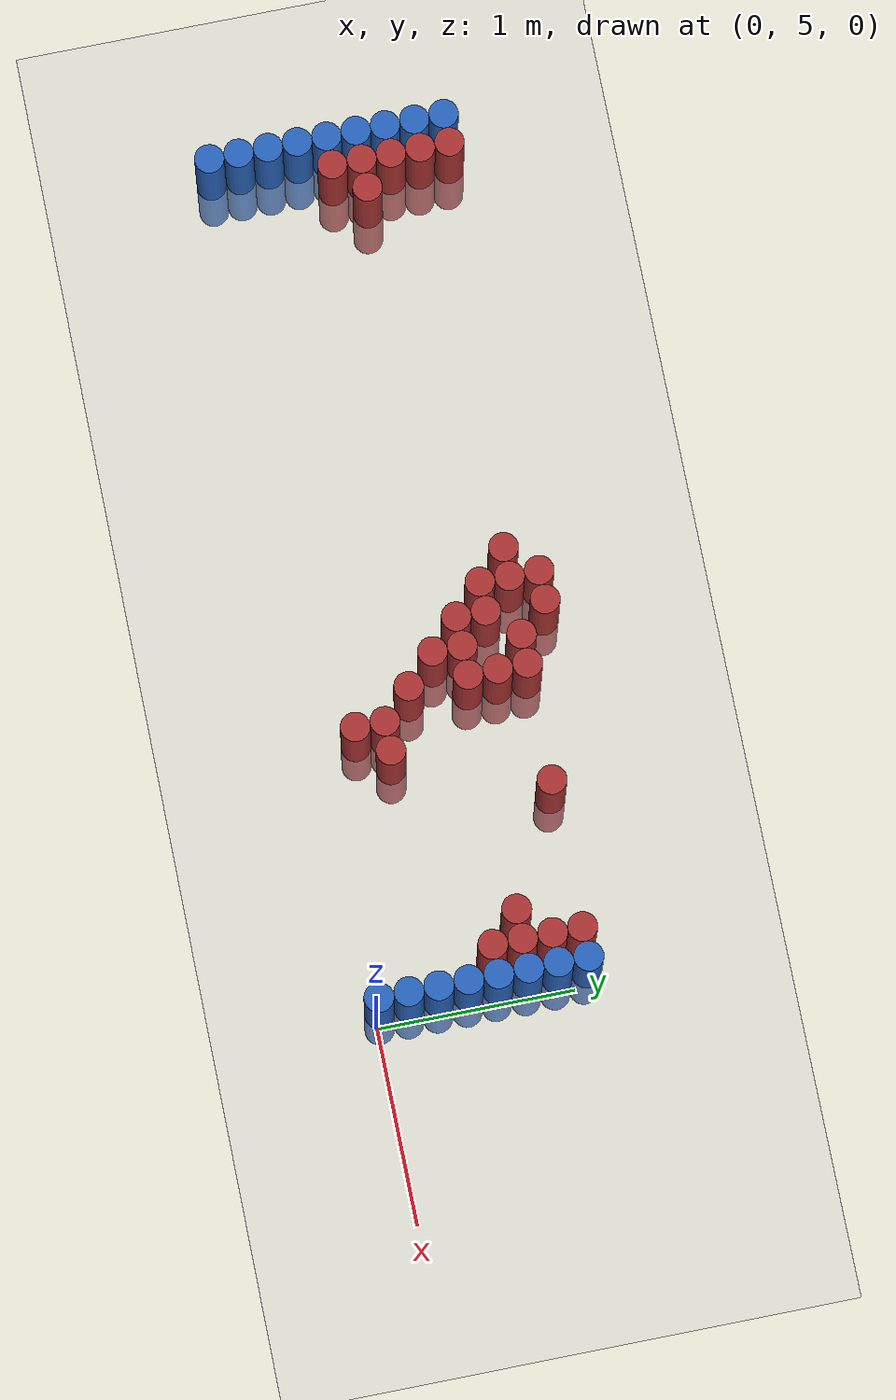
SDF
<sdf version="1.6">
 <world name="world_216">
  <model name="ground_plane">
   <static>1</static>
   <link name="link">
    <collision name="collision">
     <geometry><plane><normal>0 0 1</normal><size>100 100</size></plane></geometry>
     <surface><friction><ode><mu>100</mu><mu2>50</mu2></ode></friction></surface>
    </collision>
    <visual name="visual">
     <cast_shadows>0</cast_shadows>
     <geometry><plane><normal>0 0 1</normal><size>100 100</size></plane></geometry>
     <material>
      <script><uri>file://media/materials/scripts/gazebo.material</uri><name>Gazebo/Grey</name></script>
     </material>
    </visual>
   </link>
  </model>
  <model name="unit_cylinder_94">
   <static>1</static>
   <pose>-0.075000 5.025000 0.000000 0.000000 0.000000 0.000000</pose>
   <link name="link">
    <inertial>
     <mass>1</mass>
     <inertia><ixx>0.145833</ixx><ixy>0</ixy><ixz>0</ixz><iyy>0.145833</iyy><iyz>0</iyz><izz>0.125</izz></inertia>
    </inertial>
    <collision name="collision">
     <geometry><cylinder><radius>0.075000</radius><length>1</length></cylinder></geometry>
    </collision>
    <visual name="visual">
     <geometry><cylinder><radius>0.075000</radius><length>1</length></cylinder></geometry>
     <material>
      <ambient>0.152000 0.379000 0.720000 1</ambient>
      <diffuse>0.152000 0.379000 0.720000 1</diffuse>
     </material>
     <material>
      <script><name>Gazebo/Grey</name><uri>file://media/materials/scripts/gazebo.material</uri></script>
     </material>
    </visual>
   </link>
  </model>
  <model name="unit_cylinder_95">
   <static>1</static>
   <pose>-4.425000 5.025000 0.000000 0.000000 0.000000 0.000000</pose>
   <link name="link">
    <inertial>
     <mass>1</mass>
     <inertia><ixx>0.145833</ixx><ixy>0</ixy><ixz>0</ixz><iyy>0.145833</iyy><iyz>0</iyz><izz>0.125</izz></inertia>
    </inertial>
    <collision name="collision">
     <geometry><cylinder><radius>0.075000</radius><length>1</length></cylinder></geometry>
    </collision>
    <visual name="visual">
     <geometry><cylinder><radius>0.075000</radius><length>1</length></cylinder></geometry>
     <material>
      <ambient>0.152000 0.379000 0.720000 1</ambient>
      <diffuse>0.152000 0.379000 0.720000 1</diffuse>
     </material>
     <material>
      <script><name>Gazebo/Grey</name><uri>file://media/materials/scripts/gazebo.material</uri></script>
     </material>
    </visual>
   </link>
  </model>
  <model name="unit_cylinder_96">
   <static>1</static>
   <pose>-4.425000 5.175000 0.000000 0.000000 0.000000 0.000000</pose>
   <link name="link">
    <inertial>
     <mass>1</mass>
     <inertia><ixx>0.145833</ixx><ixy>0</ixy><ixz>0</ixz><iyy>0.145833</iyy><iyz>0</iyz><izz>0.125</izz></inertia>
    </inertial>
    <collision name="collision">
     <geometry><cylinder><radius>0.075000</radius><length>1</length></cylinder></geometry>
    </collision>
    <visual name="visual">
     <geometry><cylinder><radius>0.075000</radius><length>1</length></cylinder></geometry>
     <material>
      <ambient>0.152000 0.379000 0.720000 1</ambient>
      <diffuse>0.152000 0.379000 0.720000 1</diffuse>
     </material>
     <material>
      <script><name>Gazebo/Grey</name><uri>file://media/materials/scripts/gazebo.material</uri></script>
     </material>
    </visual>
   </link>
  </model>
  <model name="unit_cylinder_97">
   <static>1</static>
   <pose>-4.425000 5.325000 0.000000 0.000000 0.000000 0.000000</pose>
   <link name="link">
    <inertial>
     <mass>1</mass>
     <inertia><ixx>0.145833</ixx><ixy>0</ixy><ixz>0</ixz><iyy>0.145833</iyy><iyz>0</iyz><izz>0.125</izz></inertia>
    </inertial>
    <collision name="collision">
     <geometry><cylinder><radius>0.075000</radius><length>1</length></cylinder></geometry>
    </collision>
    <visual name="visual">
     <geometry><cylinder><radius>0.075000</radius><length>1</length></cylinder></geometry>
     <material>
      <ambient>0.152000 0.379000 0.720000 1</ambient>
      <diffuse>0.152000 0.379000 0.720000 1</diffuse>
     </material>
     <material>
      <script><name>Gazebo/Grey</name><uri>file://media/materials/scripts/gazebo.material</uri></script>
     </material>
    </visual>
   </link>
  </model>
  <model name="unit_cylinder_98">
   <static>1</static>
   <pose>-4.425000 5.475000 0.000000 0.000000 0.000000 0.000000</pose>
   <link name="link">
    <inertial>
     <mass>1</mass>
     <inertia><ixx>0.145833</ixx><ixy>0</ixy><ixz>0</ixz><iyy>0.145833</iyy><iyz>0</iyz><izz>0.125</izz></inertia>
    </inertial>
    <collision name="collision">
     <geometry><cylinder><radius>0.075000</radius><length>1</length></cylinder></geometry>
    </collision>
    <visual name="visual">
     <geometry><cylinder><radius>0.075000</radius><length>1</length></cylinder></geometry>
     <material>
      <ambient>0.152000 0.379000 0.720000 1</ambient>
      <diffuse>0.152000 0.379000 0.720000 1</diffuse>
     </material>
     <material>
      <script><name>Gazebo/Grey</name><uri>file://media/materials/scripts/gazebo.material</uri></script>
     </material>
    </visual>
   </link>
  </model>
  <model name="unit_cylinder_99">
   <static>1</static>
   <pose>-4.425000 5.625000 0.000000 0.000000 0.000000 0.000000</pose>
   <link name="link">
    <inertial>
     <mass>1</mass>
     <inertia><ixx>0.145833</ixx><ixy>0</ixy><ixz>0</ixz><iyy>0.145833</iyy><iyz>0</iyz><izz>0.125</izz></inertia>
    </inertial>
    <collision name="collision">
     <geometry><cylinder><radius>0.075000</radius><length>1</length></cylinder></geometry>
    </collision>
    <visual name="visual">
     <geometry><cylinder><radius>0.075000</radius><length>1</length></cylinder></geometry>
     <material>
      <ambient>0.152000 0.379000 0.720000 1</ambient>
      <diffuse>0.152000 0.379000 0.720000 1</diffuse>
     </material>
     <material>
      <script><name>Gazebo/Grey</name><uri>file://media/materials/scripts/gazebo.material</uri></script>
     </material>
    </visual>
   </link>
  </model>
  <model name="unit_cylinder_100">
   <static>1</static>
   <pose>-4.425000 5.775000 0.000000 0.000000 0.000000 0.000000</pose>
   <link name="link">
    <inertial>
     <mass>1</mass>
     <inertia><ixx>0.145833</ixx><ixy>0</ixy><ixz>0</ixz><iyy>0.145833</iyy><iyz>0</iyz><izz>0.125</izz></inertia>
    </inertial>
    <collision name="collision">
     <geometry><cylinder><radius>0.075000</radius><length>1</length></cylinder></geometry>
    </collision>
    <visual name="visual">
     <geometry><cylinder><radius>0.075000</radius><length>1</length></cylinder></geometry>
     <material>
      <ambient>0.152000 0.379000 0.720000 1</ambient>
      <diffuse>0.152000 0.379000 0.720000 1</diffuse>
     </material>
     <material>
      <script><name>Gazebo/Grey</name><uri>file://media/materials/scripts/gazebo.material</uri></script>
     </material>
    </visual>
   </link>
  </model>
  <model name="unit_cylinder_101">
   <static>1</static>
   <pose>-4.425000 5.925000 0.000000 0.000000 0.000000 0.000000</pose>
   <link name="link">
    <inertial>
     <mass>1</mass>
     <inertia><ixx>0.145833</ixx><ixy>0</ixy><ixz>0</ixz><iyy>0.145833</iyy><iyz>0</iyz><izz>0.125</izz></inertia>
    </inertial>
    <collision name="collision">
     <geometry><cylinder><radius>0.075000</radius><length>1</length></cylinder></geometry>
    </collision>
    <visual name="visual">
     <geometry><cylinder><radius>0.075000</radius><length>1</length></cylinder></geometry>
     <material>
      <ambient>0.152000 0.379000 0.720000 1</ambient>
      <diffuse>0.152000 0.379000 0.720000 1</diffuse>
     </material>
     <material>
      <script><name>Gazebo/Grey</name><uri>file://media/materials/scripts/gazebo.material</uri></script>
     </material>
    </visual>
   </link>
  </model>
  <model name="unit_cylinder_102">
   <static>1</static>
   <pose>-4.425000 6.075000 0.000000 0.000000 0.000000 0.000000</pose>
   <link name="link">
    <inertial>
     <mass>1</mass>
     <inertia><ixx>0.145833</ixx><ixy>0</ixy><ixz>0</ixz><iyy>0.145833</iyy><iyz>0</iyz><izz>0.125</izz></inertia>
    </inertial>
    <collision name="collision">
     <geometry><cylinder><radius>0.075000</radius><length>1</length></cylinder></geometry>
    </collision>
    <visual name="visual">
     <geometry><cylinder><radius>0.075000</radius><length>1</length></cylinder></geometry>
     <material>
      <ambient>0.152000 0.379000 0.720000 1</ambient>
      <diffuse>0.152000 0.379000 0.720000 1</diffuse>
     </material>
     <material>
      <script><name>Gazebo/Grey</name><uri>file://media/materials/scripts/gazebo.material</uri></script>
     </material>
    </visual>
   </link>
  </model>
  <model name="unit_cylinder_103">
   <static>1</static>
   <pose>-4.425000 6.225000 0.000000 0.000000 0.000000 0.000000</pose>
   <link name="link">
    <inertial>
     <mass>1</mass>
     <inertia><ixx>0.145833</ixx><ixy>0</ixy><ixz>0</ixz><iyy>0.145833</iyy><iyz>0</iyz><izz>0.125</izz></inertia>
    </inertial>
    <collision name="collision">
     <geometry><cylinder><radius>0.075000</radius><length>1</length></cylinder></geometry>
    </collision>
    <visual name="visual">
     <geometry><cylinder><radius>0.075000</radius><length>1</length></cylinder></geometry>
     <material>
      <ambient>0.152000 0.379000 0.720000 1</ambient>
      <diffuse>0.152000 0.379000 0.720000 1</diffuse>
     </material>
     <material>
      <script><name>Gazebo/Grey</name><uri>file://media/materials/scripts/gazebo.material</uri></script>
     </material>
    </visual>
   </link>
  </model>
  <model name="unit_cylinder_126">
   <static>1</static>
   <pose>-4.275000 5.625000 0.000000 0.000000 0.000000 0.000000</pose>
   <link name="link">
    <inertial>
     <mass>1</mass>
     <inertia><ixx>0.145833</ixx><ixy>0</ixy><ixz>0</ixz><iyy>0.145833</iyy><iyz>0</iyz><izz>0.125</izz></inertia>
    </inertial>
    <collision name="collision">
     <geometry><cylinder><radius>0.075000</radius><length>1</length></cylinder></geometry>
    </collision>
    <visual name="visual">
     <geometry><cylinder><radius>0.075000</radius><length>1</length></cylinder></geometry>
     <material>
      <ambient>0.648000 0.192000 0.192000 1</ambient>
      <diffuse>0.648000 0.192000 0.192000 1</diffuse>
     </material>
     <material>
      <script><name>Gazebo/Grey</name><uri>file://media/materials/scripts/gazebo.material</uri></script>
     </material>
    </visual>
   </link>
  </model>
  <model name="unit_cylinder_127">
   <static>1</static>
   <pose>-4.275000 5.775000 0.000000 0.000000 0.000000 0.000000</pose>
   <link name="link">
    <inertial>
     <mass>1</mass>
     <inertia><ixx>0.145833</ixx><ixy>0</ixy><ixz>0</ixz><iyy>0.145833</iyy><iyz>0</iyz><izz>0.125</izz></inertia>
    </inertial>
    <collision name="collision">
     <geometry><cylinder><radius>0.075000</radius><length>1</length></cylinder></geometry>
    </collision>
    <visual name="visual">
     <geometry><cylinder><radius>0.075000</radius><length>1</length></cylinder></geometry>
     <material>
      <ambient>0.648000 0.192000 0.192000 1</ambient>
      <diffuse>0.648000 0.192000 0.192000 1</diffuse>
     </material>
     <material>
      <script><name>Gazebo/Grey</name><uri>file://media/materials/scripts/gazebo.material</uri></script>
     </material>
    </visual>
   </link>
  </model>
  <model name="unit_cylinder_128">
   <static>1</static>
   <pose>-4.275000 5.925000 0.000000 0.000000 0.000000 0.000000</pose>
   <link name="link">
    <inertial>
     <mass>1</mass>
     <inertia><ixx>0.145833</ixx><ixy>0</ixy><ixz>0</ixz><iyy>0.145833</iyy><iyz>0</iyz><izz>0.125</izz></inertia>
    </inertial>
    <collision name="collision">
     <geometry><cylinder><radius>0.075000</radius><length>1</length></cylinder></geometry>
    </collision>
    <visual name="visual">
     <geometry><cylinder><radius>0.075000</radius><length>1</length></cylinder></geometry>
     <material>
      <ambient>0.648000 0.192000 0.192000 1</ambient>
      <diffuse>0.648000 0.192000 0.192000 1</diffuse>
     </material>
     <material>
      <script><name>Gazebo/Grey</name><uri>file://media/materials/scripts/gazebo.material</uri></script>
     </material>
    </visual>
   </link>
  </model>
  <model name="unit_cylinder_129">
   <static>1</static>
   <pose>-4.275000 6.075000 0.000000 0.000000 0.000000 0.000000</pose>
   <link name="link">
    <inertial>
     <mass>1</mass>
     <inertia><ixx>0.145833</ixx><ixy>0</ixy><ixz>0</ixz><iyy>0.145833</iyy><iyz>0</iyz><izz>0.125</izz></inertia>
    </inertial>
    <collision name="collision">
     <geometry><cylinder><radius>0.075000</radius><length>1</length></cylinder></geometry>
    </collision>
    <visual name="visual">
     <geometry><cylinder><radius>0.075000</radius><length>1</length></cylinder></geometry>
     <material>
      <ambient>0.648000 0.192000 0.192000 1</ambient>
      <diffuse>0.648000 0.192000 0.192000 1</diffuse>
     </material>
     <material>
      <script><name>Gazebo/Grey</name><uri>file://media/materials/scripts/gazebo.material</uri></script>
     </material>
    </visual>
   </link>
  </model>
  <model name="unit_cylinder_130">
   <static>1</static>
   <pose>-4.275000 6.225000 0.000000 0.000000 0.000000 0.000000</pose>
   <link name="link">
    <inertial>
     <mass>1</mass>
     <inertia><ixx>0.145833</ixx><ixy>0</ixy><ixz>0</ixz><iyy>0.145833</iyy><iyz>0</iyz><izz>0.125</izz></inertia>
    </inertial>
    <collision name="collision">
     <geometry><cylinder><radius>0.075000</radius><length>1</length></cylinder></geometry>
    </collision>
    <visual name="visual">
     <geometry><cylinder><radius>0.075000</radius><length>1</length></cylinder></geometry>
     <material>
      <ambient>0.648000 0.192000 0.192000 1</ambient>
      <diffuse>0.648000 0.192000 0.192000 1</diffuse>
     </material>
     <material>
      <script><name>Gazebo/Grey</name><uri>file://media/materials/scripts/gazebo.material</uri></script>
     </material>
    </visual>
   </link>
  </model>
  <model name="unit_cylinder_140">
   <static>1</static>
   <pose>-4.125000 5.775000 0.000000 0.000000 0.000000 0.000000</pose>
   <link name="link">
    <inertial>
     <mass>1</mass>
     <inertia><ixx>0.145833</ixx><ixy>0</ixy><ixz>0</ixz><iyy>0.145833</iyy><iyz>0</iyz><izz>0.125</izz></inertia>
    </inertial>
    <collision name="collision">
     <geometry><cylinder><radius>0.075000</radius><length>1</length></cylinder></geometry>
    </collision>
    <visual name="visual">
     <geometry><cylinder><radius>0.075000</radius><length>1</length></cylinder></geometry>
     <material>
      <ambient>0.648000 0.192000 0.192000 1</ambient>
      <diffuse>0.648000 0.192000 0.192000 1</diffuse>
     </material>
     <material>
      <script><name>Gazebo/Grey</name><uri>file://media/materials/scripts/gazebo.material</uri></script>
     </material>
    </visual>
   </link>
  </model>
  <model name="unit_cylinder_152">
   <static>1</static>
   <pose>-2.175000 6.075000 0.000000 0.000000 0.000000 0.000000</pose>
   <link name="link">
    <inertial>
     <mass>1</mass>
     <inertia><ixx>0.145833</ixx><ixy>0</ixy><ixz>0</ixz><iyy>0.145833</iyy><iyz>0</iyz><izz>0.125</izz></inertia>
    </inertial>
    <collision name="collision">
     <geometry><cylinder><radius>0.075000</radius><length>1</length></cylinder></geometry>
    </collision>
    <visual name="visual">
     <geometry><cylinder><radius>0.075000</radius><length>1</length></cylinder></geometry>
     <material>
      <ambient>0.648000 0.192000 0.192000 1</ambient>
      <diffuse>0.648000 0.192000 0.192000 1</diffuse>
     </material>
     <material>
      <script><name>Gazebo/Grey</name><uri>file://media/materials/scripts/gazebo.material</uri></script>
     </material>
    </visual>
   </link>
  </model>
  <model name="unit_cylinder_160">
   <static>1</static>
   <pose>-2.025000 5.925000 0.000000 0.000000 0.000000 0.000000</pose>
   <link name="link">
    <inertial>
     <mass>1</mass>
     <inertia><ixx>0.145833</ixx><ixy>0</ixy><ixz>0</ixz><iyy>0.145833</iyy><iyz>0</iyz><izz>0.125</izz></inertia>
    </inertial>
    <collision name="collision">
     <geometry><cylinder><radius>0.075000</radius><length>1</length></cylinder></geometry>
    </collision>
    <visual name="visual">
     <geometry><cylinder><radius>0.075000</radius><length>1</length></cylinder></geometry>
     <material>
      <ambient>0.648000 0.192000 0.192000 1</ambient>
      <diffuse>0.648000 0.192000 0.192000 1</diffuse>
     </material>
     <material>
      <script><name>Gazebo/Grey</name><uri>file://media/materials/scripts/gazebo.material</uri></script>
     </material>
    </visual>
   </link>
  </model>
  <model name="unit_cylinder_161">
   <static>1</static>
   <pose>-2.025000 6.075000 0.000000 0.000000 0.000000 0.000000</pose>
   <link name="link">
    <inertial>
     <mass>1</mass>
     <inertia><ixx>0.145833</ixx><ixy>0</ixy><ixz>0</ixz><iyy>0.145833</iyy><iyz>0</iyz><izz>0.125</izz></inertia>
    </inertial>
    <collision name="collision">
     <geometry><cylinder><radius>0.075000</radius><length>1</length></cylinder></geometry>
    </collision>
    <visual name="visual">
     <geometry><cylinder><radius>0.075000</radius><length>1</length></cylinder></geometry>
     <material>
      <ambient>0.648000 0.192000 0.192000 1</ambient>
      <diffuse>0.648000 0.192000 0.192000 1</diffuse>
     </material>
     <material>
      <script><name>Gazebo/Grey</name><uri>file://media/materials/scripts/gazebo.material</uri></script>
     </material>
    </visual>
   </link>
  </model>
  <model name="unit_cylinder_162">
   <static>1</static>
   <pose>-2.025000 6.225000 0.000000 0.000000 0.000000 0.000000</pose>
   <link name="link">
    <inertial>
     <mass>1</mass>
     <inertia><ixx>0.145833</ixx><ixy>0</ixy><ixz>0</ixz><iyy>0.145833</iyy><iyz>0</iyz><izz>0.125</izz></inertia>
    </inertial>
    <collision name="collision">
     <geometry><cylinder><radius>0.075000</radius><length>1</length></cylinder></geometry>
    </collision>
    <visual name="visual">
     <geometry><cylinder><radius>0.075000</radius><length>1</length></cylinder></geometry>
     <material>
      <ambient>0.648000 0.192000 0.192000 1</ambient>
      <diffuse>0.648000 0.192000 0.192000 1</diffuse>
     </material>
     <material>
      <script><name>Gazebo/Grey</name><uri>file://media/materials/scripts/gazebo.material</uri></script>
     </material>
    </visual>
   </link>
  </model>
  <model name="unit_cylinder_171">
   <static>1</static>
   <pose>-1.875000 5.775000 0.000000 0.000000 0.000000 0.000000</pose>
   <link name="link">
    <inertial>
     <mass>1</mass>
     <inertia><ixx>0.145833</ixx><ixy>0</ixy><ixz>0</ixz><iyy>0.145833</iyy><iyz>0</iyz><izz>0.125</izz></inertia>
    </inertial>
    <collision name="collision">
     <geometry><cylinder><radius>0.075000</radius><length>1</length></cylinder></geometry>
    </collision>
    <visual name="visual">
     <geometry><cylinder><radius>0.075000</radius><length>1</length></cylinder></geometry>
     <material>
      <ambient>0.648000 0.192000 0.192000 1</ambient>
      <diffuse>0.648000 0.192000 0.192000 1</diffuse>
     </material>
     <material>
      <script><name>Gazebo/Grey</name><uri>file://media/materials/scripts/gazebo.material</uri></script>
     </material>
    </visual>
   </link>
  </model>
  <model name="unit_cylinder_172">
   <static>1</static>
   <pose>-1.875000 5.925000 0.000000 0.000000 0.000000 0.000000</pose>
   <link name="link">
    <inertial>
     <mass>1</mass>
     <inertia><ixx>0.145833</ixx><ixy>0</ixy><ixz>0</ixz><iyy>0.145833</iyy><iyz>0</iyz><izz>0.125</izz></inertia>
    </inertial>
    <collision name="collision">
     <geometry><cylinder><radius>0.075000</radius><length>1</length></cylinder></geometry>
    </collision>
    <visual name="visual">
     <geometry><cylinder><radius>0.075000</radius><length>1</length></cylinder></geometry>
     <material>
      <ambient>0.648000 0.192000 0.192000 1</ambient>
      <diffuse>0.648000 0.192000 0.192000 1</diffuse>
     </material>
     <material>
      <script><name>Gazebo/Grey</name><uri>file://media/materials/scripts/gazebo.material</uri></script>
     </material>
    </visual>
   </link>
  </model>
  <model name="unit_cylinder_173">
   <static>1</static>
   <pose>-1.875000 6.225000 0.000000 0.000000 0.000000 0.000000</pose>
   <link name="link">
    <inertial>
     <mass>1</mass>
     <inertia><ixx>0.145833</ixx><ixy>0</ixy><ixz>0</ixz><iyy>0.145833</iyy><iyz>0</iyz><izz>0.125</izz></inertia>
    </inertial>
    <collision name="collision">
     <geometry><cylinder><radius>0.075000</radius><length>1</length></cylinder></geometry>
    </collision>
    <visual name="visual">
     <geometry><cylinder><radius>0.075000</radius><length>1</length></cylinder></geometry>
     <material>
      <ambient>0.648000 0.192000 0.192000 1</ambient>
      <diffuse>0.648000 0.192000 0.192000 1</diffuse>
     </material>
     <material>
      <script><name>Gazebo/Grey</name><uri>file://media/materials/scripts/gazebo.material</uri></script>
     </material>
    </visual>
   </link>
  </model>
  <model name="unit_cylinder_180">
   <static>1</static>
   <pose>-1.725000 5.625000 0.000000 0.000000 0.000000 0.000000</pose>
   <link name="link">
    <inertial>
     <mass>1</mass>
     <inertia><ixx>0.145833</ixx><ixy>0</ixy><ixz>0</ixz><iyy>0.145833</iyy><iyz>0</iyz><izz>0.125</izz></inertia>
    </inertial>
    <collision name="collision">
     <geometry><cylinder><radius>0.075000</radius><length>1</length></cylinder></geometry>
    </collision>
    <visual name="visual">
     <geometry><cylinder><radius>0.075000</radius><length>1</length></cylinder></geometry>
     <material>
      <ambient>0.648000 0.192000 0.192000 1</ambient>
      <diffuse>0.648000 0.192000 0.192000 1</diffuse>
     </material>
     <material>
      <script><name>Gazebo/Grey</name><uri>file://media/materials/scripts/gazebo.material</uri></script>
     </material>
    </visual>
   </link>
  </model>
  <model name="unit_cylinder_181">
   <static>1</static>
   <pose>-1.725000 5.775000 0.000000 0.000000 0.000000 0.000000</pose>
   <link name="link">
    <inertial>
     <mass>1</mass>
     <inertia><ixx>0.145833</ixx><ixy>0</ixy><ixz>0</ixz><iyy>0.145833</iyy><iyz>0</iyz><izz>0.125</izz></inertia>
    </inertial>
    <collision name="collision">
     <geometry><cylinder><radius>0.075000</radius><length>1</length></cylinder></geometry>
    </collision>
    <visual name="visual">
     <geometry><cylinder><radius>0.075000</radius><length>1</length></cylinder></geometry>
     <material>
      <ambient>0.648000 0.192000 0.192000 1</ambient>
      <diffuse>0.648000 0.192000 0.192000 1</diffuse>
     </material>
     <material>
      <script><name>Gazebo/Grey</name><uri>file://media/materials/scripts/gazebo.material</uri></script>
     </material>
    </visual>
   </link>
  </model>
  <model name="unit_cylinder_182">
   <static>1</static>
   <pose>-1.725000 6.075000 0.000000 0.000000 0.000000 0.000000</pose>
   <link name="link">
    <inertial>
     <mass>1</mass>
     <inertia><ixx>0.145833</ixx><ixy>0</ixy><ixz>0</ixz><iyy>0.145833</iyy><iyz>0</iyz><izz>0.125</izz></inertia>
    </inertial>
    <collision name="collision">
     <geometry><cylinder><radius>0.075000</radius><length>1</length></cylinder></geometry>
    </collision>
    <visual name="visual">
     <geometry><cylinder><radius>0.075000</radius><length>1</length></cylinder></geometry>
     <material>
      <ambient>0.648000 0.192000 0.192000 1</ambient>
      <diffuse>0.648000 0.192000 0.192000 1</diffuse>
     </material>
     <material>
      <script><name>Gazebo/Grey</name><uri>file://media/materials/scripts/gazebo.material</uri></script>
     </material>
    </visual>
   </link>
  </model>
  <model name="unit_cylinder_189">
   <static>1</static>
   <pose>-1.575000 5.475000 0.000000 0.000000 0.000000 0.000000</pose>
   <link name="link">
    <inertial>
     <mass>1</mass>
     <inertia><ixx>0.145833</ixx><ixy>0</ixy><ixz>0</ixz><iyy>0.145833</iyy><iyz>0</iyz><izz>0.125</izz></inertia>
    </inertial>
    <collision name="collision">
     <geometry><cylinder><radius>0.075000</radius><length>1</length></cylinder></geometry>
    </collision>
    <visual name="visual">
     <geometry><cylinder><radius>0.075000</radius><length>1</length></cylinder></geometry>
     <material>
      <ambient>0.648000 0.192000 0.192000 1</ambient>
      <diffuse>0.648000 0.192000 0.192000 1</diffuse>
     </material>
     <material>
      <script><name>Gazebo/Grey</name><uri>file://media/materials/scripts/gazebo.material</uri></script>
     </material>
    </visual>
   </link>
  </model>
  <model name="unit_cylinder_190">
   <static>1</static>
   <pose>-1.575000 5.775000 0.000000 0.000000 0.000000 0.000000</pose>
   <link name="link">
    <inertial>
     <mass>1</mass>
     <inertia><ixx>0.145833</ixx><ixy>0</ixy><ixz>0</ixz><iyy>0.145833</iyy><iyz>0</iyz><izz>0.125</izz></inertia>
    </inertial>
    <collision name="collision">
     <geometry><cylinder><radius>0.075000</radius><length>1</length></cylinder></geometry>
    </collision>
    <visual name="visual">
     <geometry><cylinder><radius>0.075000</radius><length>1</length></cylinder></geometry>
     <material>
      <ambient>0.648000 0.192000 0.192000 1</ambient>
      <diffuse>0.648000 0.192000 0.192000 1</diffuse>
     </material>
     <material>
      <script><name>Gazebo/Grey</name><uri>file://media/materials/scripts/gazebo.material</uri></script>
     </material>
    </visual>
   </link>
  </model>
  <model name="unit_cylinder_191">
   <static>1</static>
   <pose>-1.575000 5.925000 0.000000 0.000000 0.000000 0.000000</pose>
   <link name="link">
    <inertial>
     <mass>1</mass>
     <inertia><ixx>0.145833</ixx><ixy>0</ixy><ixz>0</ixz><iyy>0.145833</iyy><iyz>0</iyz><izz>0.125</izz></inertia>
    </inertial>
    <collision name="collision">
     <geometry><cylinder><radius>0.075000</radius><length>1</length></cylinder></geometry>
    </collision>
    <visual name="visual">
     <geometry><cylinder><radius>0.075000</radius><length>1</length></cylinder></geometry>
     <material>
      <ambient>0.648000 0.192000 0.192000 1</ambient>
      <diffuse>0.648000 0.192000 0.192000 1</diffuse>
     </material>
     <material>
      <script><name>Gazebo/Grey</name><uri>file://media/materials/scripts/gazebo.material</uri></script>
     </material>
    </visual>
   </link>
  </model>
  <model name="unit_cylinder_192">
   <static>1</static>
   <pose>-1.575000 6.075000 0.000000 0.000000 0.000000 0.000000</pose>
   <link name="link">
    <inertial>
     <mass>1</mass>
     <inertia><ixx>0.145833</ixx><ixy>0</ixy><ixz>0</ixz><iyy>0.145833</iyy><iyz>0</iyz><izz>0.125</izz></inertia>
    </inertial>
    <collision name="collision">
     <geometry><cylinder><radius>0.075000</radius><length>1</length></cylinder></geometry>
    </collision>
    <visual name="visual">
     <geometry><cylinder><radius>0.075000</radius><length>1</length></cylinder></geometry>
     <material>
      <ambient>0.648000 0.192000 0.192000 1</ambient>
      <diffuse>0.648000 0.192000 0.192000 1</diffuse>
     </material>
     <material>
      <script><name>Gazebo/Grey</name><uri>file://media/materials/scripts/gazebo.material</uri></script>
     </material>
    </visual>
   </link>
  </model>
  <model name="unit_cylinder_195">
   <static>1</static>
   <pose>-1.425000 5.175000 0.000000 0.000000 0.000000 0.000000</pose>
   <link name="link">
    <inertial>
     <mass>1</mass>
     <inertia><ixx>0.145833</ixx><ixy>0</ixy><ixz>0</ixz><iyy>0.145833</iyy><iyz>0</iyz><izz>0.125</izz></inertia>
    </inertial>
    <collision name="collision">
     <geometry><cylinder><radius>0.075000</radius><length>1</length></cylinder></geometry>
    </collision>
    <visual name="visual">
     <geometry><cylinder><radius>0.075000</radius><length>1</length></cylinder></geometry>
     <material>
      <ambient>0.648000 0.192000 0.192000 1</ambient>
      <diffuse>0.648000 0.192000 0.192000 1</diffuse>
     </material>
     <material>
      <script><name>Gazebo/Grey</name><uri>file://media/materials/scripts/gazebo.material</uri></script>
     </material>
    </visual>
   </link>
  </model>
  <model name="unit_cylinder_196">
   <static>1</static>
   <pose>-1.425000 5.325000 0.000000 0.000000 0.000000 0.000000</pose>
   <link name="link">
    <inertial>
     <mass>1</mass>
     <inertia><ixx>0.145833</ixx><ixy>0</ixy><ixz>0</ixz><iyy>0.145833</iyy><iyz>0</iyz><izz>0.125</izz></inertia>
    </inertial>
    <collision name="collision">
     <geometry><cylinder><radius>0.075000</radius><length>1</length></cylinder></geometry>
    </collision>
    <visual name="visual">
     <geometry><cylinder><radius>0.075000</radius><length>1</length></cylinder></geometry>
     <material>
      <ambient>0.648000 0.192000 0.192000 1</ambient>
      <diffuse>0.648000 0.192000 0.192000 1</diffuse>
     </material>
     <material>
      <script><name>Gazebo/Grey</name><uri>file://media/materials/scripts/gazebo.material</uri></script>
     </material>
    </visual>
   </link>
  </model>
  <model name="unit_cylinder_200">
   <static>1</static>
   <pose>-1.275000 5.325000 0.000000 0.000000 0.000000 0.000000</pose>
   <link name="link">
    <inertial>
     <mass>1</mass>
     <inertia><ixx>0.145833</ixx><ixy>0</ixy><ixz>0</ixz><iyy>0.145833</iyy><iyz>0</iyz><izz>0.125</izz></inertia>
    </inertial>
    <collision name="collision">
     <geometry><cylinder><radius>0.075000</radius><length>1</length></cylinder></geometry>
    </collision>
    <visual name="visual">
     <geometry><cylinder><radius>0.075000</radius><length>1</length></cylinder></geometry>
     <material>
      <ambient>0.648000 0.192000 0.192000 1</ambient>
      <diffuse>0.648000 0.192000 0.192000 1</diffuse>
     </material>
     <material>
      <script><name>Gazebo/Grey</name><uri>file://media/materials/scripts/gazebo.material</uri></script>
     </material>
    </visual>
   </link>
  </model>
  <model name="unit_cylinder_204">
   <static>1</static>
   <pose>-0.975000 6.075000 0.000000 0.000000 0.000000 0.000000</pose>
   <link name="link">
    <inertial>
     <mass>1</mass>
     <inertia><ixx>0.145833</ixx><ixy>0</ixy><ixz>0</ixz><iyy>0.145833</iyy><iyz>0</iyz><izz>0.125</izz></inertia>
    </inertial>
    <collision name="collision">
     <geometry><cylinder><radius>0.075000</radius><length>1</length></cylinder></geometry>
    </collision>
    <visual name="visual">
     <geometry><cylinder><radius>0.075000</radius><length>1</length></cylinder></geometry>
     <material>
      <ambient>0.648000 0.192000 0.192000 1</ambient>
      <diffuse>0.648000 0.192000 0.192000 1</diffuse>
     </material>
     <material>
      <script><name>Gazebo/Grey</name><uri>file://media/materials/scripts/gazebo.material</uri></script>
     </material>
    </visual>
   </link>
  </model>
  <model name="unit_cylinder_228">
   <static>1</static>
   <pose>-0.375000 5.775000 0.000000 0.000000 0.000000 0.000000</pose>
   <link name="link">
    <inertial>
     <mass>1</mass>
     <inertia><ixx>0.145833</ixx><ixy>0</ixy><ixz>0</ixz><iyy>0.145833</iyy><iyz>0</iyz><izz>0.125</izz></inertia>
    </inertial>
    <collision name="collision">
     <geometry><cylinder><radius>0.075000</radius><length>1</length></cylinder></geometry>
    </collision>
    <visual name="visual">
     <geometry><cylinder><radius>0.075000</radius><length>1</length></cylinder></geometry>
     <material>
      <ambient>0.648000 0.192000 0.192000 1</ambient>
      <diffuse>0.648000 0.192000 0.192000 1</diffuse>
     </material>
     <material>
      <script><name>Gazebo/Grey</name><uri>file://media/materials/scripts/gazebo.material</uri></script>
     </material>
    </visual>
   </link>
  </model>
  <model name="unit_cylinder_234">
   <static>1</static>
   <pose>-0.225000 5.625000 0.000000 0.000000 0.000000 0.000000</pose>
   <link name="link">
    <inertial>
     <mass>1</mass>
     <inertia><ixx>0.145833</ixx><ixy>0</ixy><ixz>0</ixz><iyy>0.145833</iyy><iyz>0</iyz><izz>0.125</izz></inertia>
    </inertial>
    <collision name="collision">
     <geometry><cylinder><radius>0.075000</radius><length>1</length></cylinder></geometry>
    </collision>
    <visual name="visual">
     <geometry><cylinder><radius>0.075000</radius><length>1</length></cylinder></geometry>
     <material>
      <ambient>0.648000 0.192000 0.192000 1</ambient>
      <diffuse>0.648000 0.192000 0.192000 1</diffuse>
     </material>
     <material>
      <script><name>Gazebo/Grey</name><uri>file://media/materials/scripts/gazebo.material</uri></script>
     </material>
    </visual>
   </link>
  </model>
  <model name="unit_cylinder_235">
   <static>1</static>
   <pose>-0.225000 5.775000 0.000000 0.000000 0.000000 0.000000</pose>
   <link name="link">
    <inertial>
     <mass>1</mass>
     <inertia><ixx>0.145833</ixx><ixy>0</ixy><ixz>0</ixz><iyy>0.145833</iyy><iyz>0</iyz><izz>0.125</izz></inertia>
    </inertial>
    <collision name="collision">
     <geometry><cylinder><radius>0.075000</radius><length>1</length></cylinder></geometry>
    </collision>
    <visual name="visual">
     <geometry><cylinder><radius>0.075000</radius><length>1</length></cylinder></geometry>
     <material>
      <ambient>0.648000 0.192000 0.192000 1</ambient>
      <diffuse>0.648000 0.192000 0.192000 1</diffuse>
     </material>
     <material>
      <script><name>Gazebo/Grey</name><uri>file://media/materials/scripts/gazebo.material</uri></script>
     </material>
    </visual>
   </link>
  </model>
  <model name="unit_cylinder_236">
   <static>1</static>
   <pose>-0.225000 5.925000 0.000000 0.000000 0.000000 0.000000</pose>
   <link name="link">
    <inertial>
     <mass>1</mass>
     <inertia><ixx>0.145833</ixx><ixy>0</ixy><ixz>0</ixz><iyy>0.145833</iyy><iyz>0</iyz><izz>0.125</izz></inertia>
    </inertial>
    <collision name="collision">
     <geometry><cylinder><radius>0.075000</radius><length>1</length></cylinder></geometry>
    </collision>
    <visual name="visual">
     <geometry><cylinder><radius>0.075000</radius><length>1</length></cylinder></geometry>
     <material>
      <ambient>0.648000 0.192000 0.192000 1</ambient>
      <diffuse>0.648000 0.192000 0.192000 1</diffuse>
     </material>
     <material>
      <script><name>Gazebo/Grey</name><uri>file://media/materials/scripts/gazebo.material</uri></script>
     </material>
    </visual>
   </link>
  </model>
  <model name="unit_cylinder_237">
   <static>1</static>
   <pose>-0.225000 6.075000 0.000000 0.000000 0.000000 0.000000</pose>
   <link name="link">
    <inertial>
     <mass>1</mass>
     <inertia><ixx>0.145833</ixx><ixy>0</ixy><ixz>0</ixz><iyy>0.145833</iyy><iyz>0</iyz><izz>0.125</izz></inertia>
    </inertial>
    <collision name="collision">
     <geometry><cylinder><radius>0.075000</radius><length>1</length></cylinder></geometry>
    </collision>
    <visual name="visual">
     <geometry><cylinder><radius>0.075000</radius><length>1</length></cylinder></geometry>
     <material>
      <ambient>0.648000 0.192000 0.192000 1</ambient>
      <diffuse>0.648000 0.192000 0.192000 1</diffuse>
     </material>
     <material>
      <script><name>Gazebo/Grey</name><uri>file://media/materials/scripts/gazebo.material</uri></script>
     </material>
    </visual>
   </link>
  </model>
  <model name="unit_cylinder_250">
   <static>1</static>
   <pose>-0.075000 5.175000 0.000000 0.000000 0.000000 0.000000</pose>
   <link name="link">
    <inertial>
     <mass>1</mass>
     <inertia><ixx>0.145833</ixx><ixy>0</ixy><ixz>0</ixz><iyy>0.145833</iyy><iyz>0</iyz><izz>0.125</izz></inertia>
    </inertial>
    <collision name="collision">
     <geometry><cylinder><radius>0.075000</radius><length>1</length></cylinder></geometry>
    </collision>
    <visual name="visual">
     <geometry><cylinder><radius>0.075000</radius><length>1</length></cylinder></geometry>
     <material>
      <ambient>0.152000 0.379000 0.720000 1</ambient>
      <diffuse>0.152000 0.379000 0.720000 1</diffuse>
     </material>
     <material>
      <script><name>Gazebo/Grey</name><uri>file://media/materials/scripts/gazebo.material</uri></script>
     </material>
    </visual>
   </link>
  </model>
  <model name="unit_cylinder_251">
   <static>1</static>
   <pose>-0.075000 5.325000 0.000000 0.000000 0.000000 0.000000</pose>
   <link name="link">
    <inertial>
     <mass>1</mass>
     <inertia><ixx>0.145833</ixx><ixy>0</ixy><ixz>0</ixz><iyy>0.145833</iyy><iyz>0</iyz><izz>0.125</izz></inertia>
    </inertial>
    <collision name="collision">
     <geometry><cylinder><radius>0.075000</radius><length>1</length></cylinder></geometry>
    </collision>
    <visual name="visual">
     <geometry><cylinder><radius>0.075000</radius><length>1</length></cylinder></geometry>
     <material>
      <ambient>0.152000 0.379000 0.720000 1</ambient>
      <diffuse>0.152000 0.379000 0.720000 1</diffuse>
     </material>
     <material>
      <script><name>Gazebo/Grey</name><uri>file://media/materials/scripts/gazebo.material</uri></script>
     </material>
    </visual>
   </link>
  </model>
  <model name="unit_cylinder_252">
   <static>1</static>
   <pose>-0.075000 5.475000 0.000000 0.000000 0.000000 0.000000</pose>
   <link name="link">
    <inertial>
     <mass>1</mass>
     <inertia><ixx>0.145833</ixx><ixy>0</ixy><ixz>0</ixz><iyy>0.145833</iyy><iyz>0</iyz><izz>0.125</izz></inertia>
    </inertial>
    <collision name="collision">
     <geometry><cylinder><radius>0.075000</radius><length>1</length></cylinder></geometry>
    </collision>
    <visual name="visual">
     <geometry><cylinder><radius>0.075000</radius><length>1</length></cylinder></geometry>
     <material>
      <ambient>0.152000 0.379000 0.720000 1</ambient>
      <diffuse>0.152000 0.379000 0.720000 1</diffuse>
     </material>
     <material>
      <script><name>Gazebo/Grey</name><uri>file://media/materials/scripts/gazebo.material</uri></script>
     </material>
    </visual>
   </link>
  </model>
  <model name="unit_cylinder_253">
   <static>1</static>
   <pose>-0.075000 5.625000 0.000000 0.000000 0.000000 0.000000</pose>
   <link name="link">
    <inertial>
     <mass>1</mass>
     <inertia><ixx>0.145833</ixx><ixy>0</ixy><ixz>0</ixz><iyy>0.145833</iyy><iyz>0</iyz><izz>0.125</izz></inertia>
    </inertial>
    <collision name="collision">
     <geometry><cylinder><radius>0.075000</radius><length>1</length></cylinder></geometry>
    </collision>
    <visual name="visual">
     <geometry><cylinder><radius>0.075000</radius><length>1</length></cylinder></geometry>
     <material>
      <ambient>0.152000 0.379000 0.720000 1</ambient>
      <diffuse>0.152000 0.379000 0.720000 1</diffuse>
     </material>
     <material>
      <script><name>Gazebo/Grey</name><uri>file://media/materials/scripts/gazebo.material</uri></script>
     </material>
    </visual>
   </link>
  </model>
  <model name="unit_cylinder_254">
   <static>1</static>
   <pose>-0.075000 5.775000 0.000000 0.000000 0.000000 0.000000</pose>
   <link name="link">
    <inertial>
     <mass>1</mass>
     <inertia><ixx>0.145833</ixx><ixy>0</ixy><ixz>0</ixz><iyy>0.145833</iyy><iyz>0</iyz><izz>0.125</izz></inertia>
    </inertial>
    <collision name="collision">
     <geometry><cylinder><radius>0.075000</radius><length>1</length></cylinder></geometry>
    </collision>
    <visual name="visual">
     <geometry><cylinder><radius>0.075000</radius><length>1</length></cylinder></geometry>
     <material>
      <ambient>0.152000 0.379000 0.720000 1</ambient>
      <diffuse>0.152000 0.379000 0.720000 1</diffuse>
     </material>
     <material>
      <script><name>Gazebo/Grey</name><uri>file://media/materials/scripts/gazebo.material</uri></script>
     </material>
    </visual>
   </link>
  </model>
  <model name="unit_cylinder_255">
   <static>1</static>
   <pose>-0.075000 5.925000 0.000000 0.000000 0.000000 0.000000</pose>
   <link name="link">
    <inertial>
     <mass>1</mass>
     <inertia><ixx>0.145833</ixx><ixy>0</ixy><ixz>0</ixz><iyy>0.145833</iyy><iyz>0</iyz><izz>0.125</izz></inertia>
    </inertial>
    <collision name="collision">
     <geometry><cylinder><radius>0.075000</radius><length>1</length></cylinder></geometry>
    </collision>
    <visual name="visual">
     <geometry><cylinder><radius>0.075000</radius><length>1</length></cylinder></geometry>
     <material>
      <ambient>0.152000 0.379000 0.720000 1</ambient>
      <diffuse>0.152000 0.379000 0.720000 1</diffuse>
     </material>
     <material>
      <script><name>Gazebo/Grey</name><uri>file://media/materials/scripts/gazebo.material</uri></script>
     </material>
    </visual>
   </link>
  </model>
  <model name="unit_cylinder_256">
   <static>1</static>
   <pose>-0.075000 6.075000 0.000000 0.000000 0.000000 0.000000</pose>
   <link name="link">
    <inertial>
     <mass>1</mass>
     <inertia><ixx>0.145833</ixx><ixy>0</ixy><ixz>0</ixz><iyy>0.145833</iyy><iyz>0</iyz><izz>0.125</izz></inertia>
    </inertial>
    <collision name="collision">
     <geometry><cylinder><radius>0.075000</radius><length>1</length></cylinder></geometry>
    </collision>
    <visual name="visual">
     <geometry><cylinder><radius>0.075000</radius><length>1</length></cylinder></geometry>
     <material>
      <ambient>0.152000 0.379000 0.720000 1</ambient>
      <diffuse>0.152000 0.379000 0.720000 1</diffuse>
     </material>
     <material>
      <script><name>Gazebo/Grey</name><uri>file://media/materials/scripts/gazebo.material</uri></script>
     </material>
    </visual>
   </link>
  </model>
 </world>
</sdf>
